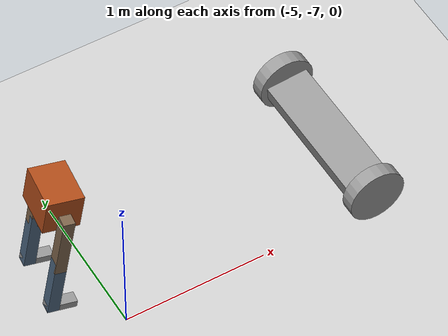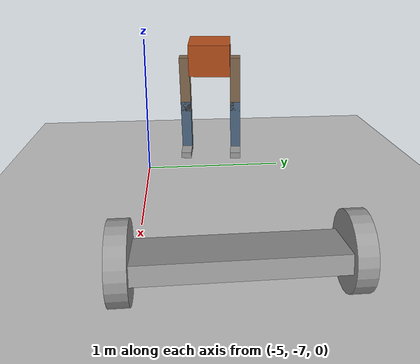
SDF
<sdf version="1.6">
 <world name="default">
  <model name="ground_plane">
   <static>1</static>
   <link name="link">
    <collision name="collision">
     <geometry><plane><normal>0 0 1</normal><size>100 100</size></plane></geometry>
     <surface><friction><ode><mu>100</mu><mu2>50</mu2></ode></friction></surface>
    </collision>
    <visual name="visual">
     <cast_shadows>0</cast_shadows>
     <geometry><plane><normal>0 0 1</normal><size>100 100</size></plane></geometry>
     <material>
      <script><uri>file://media/materials/scripts/gazebo.material</uri><name>Gazebo/Grey</name></script>
     </material>
    </visual>
   </link>
  </model>
  <model name="humanoid">
   <link name="link_0">
    <pose>0.043928 -0.199999 -0.333571 0 -0 0</pose>
    <inertial>
     <mass>1</mass>
     <inertia>
      <ixx>0.166667</ixx>
      <ixy>0</ixy>
      <ixz>0</ixz>
      <iyy>0.166667</iyy>
      <iyz>0</iyz>
      <izz>0.166667</izz>
     </inertia>
    </inertial>
    <visual name="visual">
     <geometry><box><size>0.2 0.08 0.05</size></box></geometry>
     <material>
      <lighting>1</lighting>
      <script><uri>file://media/materials/scripts/gazebo.material</uri><name>Gazebo/Grey</name></script>
      <ambient>0.3 0.3 0.3 1</ambient>
      <diffuse>0.7 0.7 0.7 1</diffuse>
      <specular>0.01 0.01 0.01 1</specular>
      <emissive>0 0 0 1</emissive>
      <shader type="vertex"><normal_map>__default__</normal_map></shader>
     </material>
    </visual>
    <collision name="collision">
     <geometry><box><size>0.2 0.08 0.05</size></box></geometry>
     <surface>
      <friction>
       <ode><mu>1</mu><mu2>1</mu2><fdir1>0 0 0</fdir1><slip1>0</slip1><slip2>0</slip2></ode>
       <torsional>
        <coefficient>1</coefficient>
        <patch_radius>0</patch_radius>
        <surface_radius>0</surface_radius>
        <use_patch_radius>1</use_patch_radius>
        <ode><slip>0</slip></ode>
       </torsional>
      </friction>
      <bounce><restitution_coefficient>0</restitution_coefficient><threshold>1e+06</threshold></bounce>
      <contact>
       <collide_without_contact>0</collide_without_contact>
       <collide_without_contact_bitmask>1</collide_without_contact_bitmask>
       <collide_bitmask>1</collide_bitmask>
       <ode>
        <soft_cfm>0</soft_cfm>
        <soft_erp>0.2</soft_erp>
        <kp>1e+13</kp>
        <kd>1</kd>
        <max_vel>0.01</max_vel>
        <min_depth>0</min_depth>
       </ode>
       <bullet>
        <split_impulse>1</split_impulse>
        <split_impulse_penetration_threshold>-0.01</split_impulse_penetration_threshold>
        <soft_cfm>0</soft_cfm>
        <soft_erp>0.2</soft_erp>
        <kp>1e+13</kp>
        <kd>1</kd>
       </bullet>
      </contact>
     </surface>
    </collision>
   </link>
   <link name="link_0_clone">
    <pose>0.043928 0.200001 -0.333571 0 -0 0</pose>
    <inertial>
     <mass>1</mass>
     <inertia>
      <ixx>0.166667</ixx>
      <ixy>0</ixy>
      <ixz>0</ixz>
      <iyy>0.166667</iyy>
      <iyz>0</iyz>
      <izz>0.166667</izz>
     </inertia>
    </inertial>
    <visual name="visual">
     <geometry><box><size>0.2 0.08 0.05</size></box></geometry>
     <material>
      <lighting>1</lighting>
      <script><uri>file://media/materials/scripts/gazebo.material</uri><name>Gazebo/Grey</name></script>
      <ambient>0.3 0.3 0.3 1</ambient>
      <diffuse>0.7 0.7 0.7 1</diffuse>
      <specular>0.01 0.01 0.01 1</specular>
      <emissive>0 0 0 1</emissive>
      <shader type="vertex"><normal_map>__default__</normal_map></shader>
     </material>
    </visual>
    <collision name="collision">
     <geometry><box><size>0.2 0.08 0.05</size></box></geometry>
     <surface>
      <friction>
       <ode><mu>1</mu><mu2>1</mu2><fdir1>0 0 0</fdir1><slip1>0</slip1><slip2>0</slip2></ode>
       <torsional>
        <coefficient>1</coefficient>
        <patch_radius>0</patch_radius>
        <surface_radius>0</surface_radius>
        <use_patch_radius>1</use_patch_radius>
        <ode><slip>0</slip></ode>
       </torsional>
      </friction>
      <bounce><restitution_coefficient>0</restitution_coefficient><threshold>1e+06</threshold></bounce>
      <contact>
       <collide_without_contact>0</collide_without_contact>
       <collide_without_contact_bitmask>1</collide_without_contact_bitmask>
       <collide_bitmask>1</collide_bitmask>
       <ode>
        <soft_cfm>0</soft_cfm>
        <soft_erp>0.2</soft_erp>
        <kp>1e+13</kp>
        <kd>1</kd>
        <max_vel>0.01</max_vel>
        <min_depth>0</min_depth>
       </ode>
       <bullet>
        <split_impulse>1</split_impulse>
        <split_impulse_penetration_threshold>-0.01</split_impulse_penetration_threshold>
        <soft_cfm>0</soft_cfm>
        <soft_erp>0.2</soft_erp>
        <kp>1e+13</kp>
        <kd>1</kd>
       </bullet>
      </contact>
     </surface>
    </collision>
   </link>
   <link name="link_0_clone_0">
    <pose>-0.016072 -0.199999 -0.133571 0 -0 0</pose>
    <inertial>
     <mass>1</mass>
     <inertia>
      <ixx>0.166667</ixx>
      <ixy>0</ixy>
      <ixz>0</ixz>
      <iyy>0.166667</iyy>
      <iyz>0</iyz>
      <izz>0.166667</izz>
     </inertia>
    </inertial>
    <visual name="visual">
     <geometry><box><size>0.08 0.08 0.45</size></box></geometry>
     <material>
      <lighting>1</lighting>
      <script><uri>file://media/materials/scripts/gazebo.material</uri><name>Gazebo/Grey</name></script>
      <ambient>0.3 0.4 0.5 1</ambient>
      <diffuse>0.7 0.7 0.7 1</diffuse>
      <specular>0.01 0.01 0.01 1</specular>
      <emissive>0 0 0 1</emissive>
      <shader type="vertex"><normal_map>__default__</normal_map></shader>
     </material>
    </visual>
    <collision name="collision">
     <geometry><box><size>0.08 0.08 0.45</size></box></geometry>
     <surface>
      <friction>
       <ode><mu>1</mu><mu2>1</mu2><fdir1>0 0 0</fdir1><slip1>0</slip1><slip2>0</slip2></ode>
       <torsional>
        <coefficient>1</coefficient>
        <patch_radius>0</patch_radius>
        <surface_radius>0</surface_radius>
        <use_patch_radius>1</use_patch_radius>
        <ode><slip>0</slip></ode>
       </torsional>
      </friction>
      <bounce><restitution_coefficient>0</restitution_coefficient><threshold>1e+06</threshold></bounce>
      <contact>
       <collide_without_contact>0</collide_without_contact>
       <collide_without_contact_bitmask>1</collide_without_contact_bitmask>
       <collide_bitmask>1</collide_bitmask>
       <ode>
        <soft_cfm>0</soft_cfm>
        <soft_erp>0.2</soft_erp>
        <kp>1e+13</kp>
        <kd>1</kd>
        <max_vel>0.01</max_vel>
        <min_depth>0</min_depth>
       </ode>
       <bullet>
        <split_impulse>1</split_impulse>
        <split_impulse_penetration_threshold>-0.01</split_impulse_penetration_threshold>
        <soft_cfm>0</soft_cfm>
        <soft_erp>0.2</soft_erp>
        <kp>1e+13</kp>
        <kd>1</kd>
       </bullet>
      </contact>
     </surface>
    </collision>
   </link>
   <link name="link_0_clone_0_clone">
    <pose>-0.016072 0.200001 -0.133571 0 -0 0</pose>
    <inertial>
     <mass>1</mass>
     <inertia>
      <ixx>0.166667</ixx>
      <ixy>0</ixy>
      <ixz>0</ixz>
      <iyy>0.166667</iyy>
      <iyz>0</iyz>
      <izz>0.166667</izz>
     </inertia>
    </inertial>
    <visual name="visual">
     <geometry><box><size>0.08 0.08 0.45</size></box></geometry>
     <material>
      <lighting>1</lighting>
      <script><uri>file://media/materials/scripts/gazebo.material</uri><name>Gazebo/Grey</name></script>
      <ambient>0.3 0.4 0.5 1</ambient>
      <diffuse>0.7 0.7 0.7 1</diffuse>
      <specular>0.01 0.01 0.01 1</specular>
      <emissive>0 0 0 1</emissive>
      <shader type="vertex"><normal_map>__default__</normal_map></shader>
     </material>
    </visual>
    <collision name="collision">
     <geometry><box><size>0.08 0.08 0.45</size></box></geometry>
     <surface>
      <friction>
       <ode><mu>1</mu><mu2>1</mu2><fdir1>0 0 0</fdir1><slip1>0</slip1><slip2>0</slip2></ode>
       <torsional>
        <coefficient>1</coefficient>
        <patch_radius>0</patch_radius>
        <surface_radius>0</surface_radius>
        <use_patch_radius>1</use_patch_radius>
        <ode><slip>0</slip></ode>
       </torsional>
      </friction>
      <bounce><restitution_coefficient>0</restitution_coefficient><threshold>1e+06</threshold></bounce>
      <contact>
       <collide_without_contact>0</collide_without_contact>
       <collide_without_contact_bitmask>1</collide_without_contact_bitmask>
       <collide_bitmask>1</collide_bitmask>
       <ode>
        <soft_cfm>0</soft_cfm>
        <soft_erp>0.2</soft_erp>
        <kp>1e+13</kp>
        <kd>1</kd>
        <max_vel>0.01</max_vel>
        <min_depth>0</min_depth>
       </ode>
       <bullet>
        <split_impulse>1</split_impulse>
        <split_impulse_penetration_threshold>-0.01</split_impulse_penetration_threshold>
        <soft_cfm>0</soft_cfm>
        <soft_erp>0.2</soft_erp>
        <kp>1e+13</kp>
        <kd>1</kd>
       </bullet>
      </contact>
     </surface>
    </collision>
   </link>
   <link name="link_0_clone_0_clone_0">
    <pose>-0.016072 -0.199999 0.236429 0 -0 0</pose>
    <inertial>
     <mass>1</mass>
     <inertia>
      <ixx>0.166667</ixx>
      <ixy>0</ixy>
      <ixz>0</ixz>
      <iyy>0.166667</iyy>
      <iyz>0</iyz>
      <izz>0.166667</izz>
     </inertia>
    </inertial>
    <visual name="visual">
     <geometry><box><size>0.08 0.08 0.45</size></box></geometry>
     <material>
      <lighting>1</lighting>
      <script><uri>file://media/materials/scripts/gazebo.material</uri><name>Gazebo/Grey</name></script>
      <ambient>0.5 0.4 0.3 1</ambient>
      <diffuse>0.7 0.7 0.7 1</diffuse>
      <specular>0.01 0.01 0.01 1</specular>
      <emissive>0 0 0 1</emissive>
      <shader type="vertex"><normal_map>__default__</normal_map></shader>
     </material>
    </visual>
    <collision name="collision">
     <geometry><box><size>0.08 0.08 0.45</size></box></geometry>
     <surface>
      <friction>
       <ode><mu>1</mu><mu2>1</mu2><fdir1>0 0 0</fdir1><slip1>0</slip1><slip2>0</slip2></ode>
       <torsional>
        <coefficient>1</coefficient>
        <patch_radius>0</patch_radius>
        <surface_radius>0</surface_radius>
        <use_patch_radius>1</use_patch_radius>
        <ode><slip>0</slip></ode>
       </torsional>
      </friction>
      <bounce><restitution_coefficient>0</restitution_coefficient><threshold>1e+06</threshold></bounce>
      <contact>
       <collide_without_contact>0</collide_without_contact>
       <collide_without_contact_bitmask>1</collide_without_contact_bitmask>
       <collide_bitmask>1</collide_bitmask>
       <ode>
        <soft_cfm>0</soft_cfm>
        <soft_erp>0.2</soft_erp>
        <kp>1e+13</kp>
        <kd>1</kd>
        <max_vel>0.01</max_vel>
        <min_depth>0</min_depth>
       </ode>
       <bullet>
        <split_impulse>1</split_impulse>
        <split_impulse_penetration_threshold>-0.01</split_impulse_penetration_threshold>
        <soft_cfm>0</soft_cfm>
        <soft_erp>0.2</soft_erp>
        <kp>1e+13</kp>
        <kd>1</kd>
       </bullet>
      </contact>
     </surface>
    </collision>
   </link>
   <link name="link_0_clone_0_clone_0_clone">
    <pose>-0.016072 0.200001 0.236429 0 -0 0</pose>
    <inertial>
     <mass>1</mass>
     <inertia>
      <ixx>0.166667</ixx>
      <ixy>0</ixy>
      <ixz>0</ixz>
      <iyy>0.166667</iyy>
      <iyz>0</iyz>
      <izz>0.166667</izz>
     </inertia>
    </inertial>
    <visual name="visual">
     <geometry><box><size>0.08 0.08 0.45</size></box></geometry>
     <material>
      <lighting>1</lighting>
      <script><uri>file://media/materials/scripts/gazebo.material</uri><name>Gazebo/Grey</name></script>
      <ambient>0.5 0.4 0.3 1</ambient>
      <diffuse>0.7 0.7 0.7 1</diffuse>
      <specular>0.01 0.01 0.01 1</specular>
      <emissive>0 0 0 1</emissive>
      <shader type="vertex"><normal_map>__default__</normal_map></shader>
     </material>
    </visual>
    <collision name="collision">
     <geometry><box><size>0.08 0.08 0.45</size></box></geometry>
     <surface>
      <friction>
       <ode><mu>1</mu><mu2>1</mu2><fdir1>0 0 0</fdir1><slip1>0</slip1><slip2>0</slip2></ode>
       <torsional>
        <coefficient>1</coefficient>
        <patch_radius>0</patch_radius>
        <surface_radius>0</surface_radius>
        <use_patch_radius>1</use_patch_radius>
        <ode><slip>0</slip></ode>
       </torsional>
      </friction>
      <bounce><restitution_coefficient>0</restitution_coefficient><threshold>1e+06</threshold></bounce>
      <contact>
       <collide_without_contact>0</collide_without_contact>
       <collide_without_contact_bitmask>1</collide_without_contact_bitmask>
       <collide_bitmask>1</collide_bitmask>
       <ode>
        <soft_cfm>0</soft_cfm>
        <soft_erp>0.2</soft_erp>
        <kp>1e+13</kp>
        <kd>1</kd>
        <max_vel>0.01</max_vel>
        <min_depth>0</min_depth>
       </ode>
       <bullet>
        <split_impulse>1</split_impulse>
        <split_impulse_penetration_threshold>-0.01</split_impulse_penetration_threshold>
        <soft_cfm>0</soft_cfm>
        <soft_erp>0.2</soft_erp>
        <kp>1e+13</kp>
        <kd>1</kd>
       </bullet>
      </contact>
     </surface>
    </collision>
   </link>
   <link name="link_2">
    <pose>-0.023572 1e-06 0.461429 0 -0 0</pose>
    <inertial>
     <mass>1</mass>
     <inertia>
      <ixx>0.166667</ixx>
      <ixy>0</ixy>
      <ixz>0</ixz>
      <iyy>0.166667</iyy>
      <iyz>0</iyz>
      <izz>0.166667</izz>
     </inertia>
    </inertial>
    <visual name="visual">
     <geometry><box><size>0.25 0.32 0.25</size></box></geometry>
     <material>
      <lighting>1</lighting>
      <script><uri>file://media/materials/scripts/gazebo.material</uri><name>Gazebo/Grey</name></script>
      <ambient>0.7 0.3 0.1 1</ambient>
      <diffuse>0.7 0.7 0.7 1</diffuse>
      <specular>0.01 0.01 0.01 1</specular>
      <emissive>0 0 0 1</emissive>
      <shader type="vertex"><normal_map>__default__</normal_map></shader>
     </material>
    </visual>
    <collision name="collision">
     <geometry><box><size>0.25 0.32 0.25</size></box></geometry>
     <surface>
      <friction>
       <ode><mu>1</mu><mu2>1</mu2><fdir1>0 0 0</fdir1><slip1>0</slip1><slip2>0</slip2></ode>
       <torsional>
        <coefficient>1</coefficient>
        <patch_radius>0</patch_radius>
        <surface_radius>0</surface_radius>
        <use_patch_radius>1</use_patch_radius>
        <ode><slip>0</slip></ode>
       </torsional>
      </friction>
      <bounce><restitution_coefficient>0</restitution_coefficient><threshold>1e+06</threshold></bounce>
      <contact>
       <collide_without_contact>0</collide_without_contact>
       <collide_without_contact_bitmask>1</collide_without_contact_bitmask>
       <collide_bitmask>1</collide_bitmask>
       <ode>
        <soft_cfm>0</soft_cfm>
        <soft_erp>0.2</soft_erp>
        <kp>1e+13</kp>
        <kd>1</kd>
        <max_vel>0.01</max_vel>
        <min_depth>0</min_depth>
       </ode>
       <bullet>
        <split_impulse>1</split_impulse>
        <split_impulse_penetration_threshold>-0.01</split_impulse_penetration_threshold>
        <soft_cfm>0</soft_cfm>
        <soft_erp>0.2</soft_erp>
        <kp>1e+13</kp>
        <kd>1</kd>
       </bullet>
      </contact>
     </surface>
    </collision>
   </link>
   <joint name="link_0_clone_0_JOINT_12" type="revolute">
    <parent>link_0_clone_0</parent>
    <child>link_0</child>
    <pose>-0.05 0 0 0 -0 0</pose>
    <axis>
     <xyz>0 1 0</xyz>
     <use_parent_model_frame>0</use_parent_model_frame>
     <limit>
      <lower>-1.79769e+308</lower>
      <upper>1.79769e+308</upper>
      <effort>-1</effort>
      <velocity>-1</velocity>
     </limit>
     <dynamics>
      <spring_reference>0</spring_reference>
      <spring_stiffness>0</spring_stiffness>
      <damping>0</damping>
      <friction>0</friction>
     </dynamics>
    </axis>
    <physics>
     <ode><limit><cfm>0</cfm><erp>0.2</erp></limit><suspension><cfm>0</cfm><erp>0.2</erp></suspension></ode>
    </physics>
   </joint>
   <joint name="link_0_clone_0_clone_0_JOINT_8" type="revolute">
    <parent>link_0_clone_0_clone_0</parent>
    <child>link_0_clone_0</child>
    <pose>0 0 0.225 0 -0 0</pose>
    <axis>
     <xyz>0 1 0</xyz>
     <use_parent_model_frame>0</use_parent_model_frame>
     <limit>
      <lower>-1.79769e+308</lower>
      <upper>1.79769e+308</upper>
      <effort>-1</effort>
      <velocity>-1</velocity>
     </limit>
     <dynamics>
      <spring_reference>0</spring_reference>
      <spring_stiffness>0</spring_stiffness>
      <damping>0</damping>
      <friction>0</friction>
     </dynamics>
    </axis>
    <physics>
     <ode><limit><cfm>0</cfm><erp>0.2</erp></limit><suspension><cfm>0</cfm><erp>0.2</erp></suspension></ode>
    </physics>
   </joint>
   <joint name="link_0_clone_0_clone_0_clone_JOINT_10" type="revolute">
    <parent>link_0_clone_0_clone_0_clone</parent>
    <child>link_0_clone_0_clone</child>
    <pose>0 0 0.225 0 -0 0</pose>
    <axis>
     <xyz>0 -1 0</xyz>
     <use_parent_model_frame>0</use_parent_model_frame>
     <limit>
      <lower>-1.79769e+308</lower>
      <upper>1.79769e+308</upper>
      <effort>-1</effort>
      <velocity>-1</velocity>
     </limit>
     <dynamics>
      <spring_reference>0</spring_reference>
      <spring_stiffness>0</spring_stiffness>
      <damping>0</damping>
      <friction>0</friction>
     </dynamics>
    </axis>
    <physics>
     <ode><limit><cfm>0</cfm><erp>0.2</erp></limit><suspension><cfm>0</cfm><erp>0.2</erp></suspension></ode>
    </physics>
   </joint>
   <joint name="link_0_clone_0_clone_JOINT_11" type="revolute">
    <parent>link_0_clone_0_clone</parent>
    <child>link_0_clone</child>
    <pose>-0.05 0 0 0 -0 0</pose>
    <axis>
     <xyz>0 -1 0</xyz>
     <use_parent_model_frame>0</use_parent_model_frame>
     <limit>
      <lower>-1.79769e+308</lower>
      <upper>1.79769e+308</upper>
      <effort>-1</effort>
      <velocity>-1</velocity>
     </limit>
     <dynamics>
      <spring_reference>0</spring_reference>
      <spring_stiffness>0</spring_stiffness>
      <damping>0</damping>
      <friction>0</friction>
     </dynamics>
    </axis>
    <physics>
     <ode><limit><cfm>0</cfm><erp>0.2</erp></limit><suspension><cfm>0</cfm><erp>0.2</erp></suspension></ode>
    </physics>
   </joint>
   <joint name="link_2_JOINT_6" type="revolute">
    <parent>link_2</parent>
    <child>link_0_clone_0_clone_0</child>
    <pose>0 0 0.225 0 -0 0</pose>
    <axis>
     <xyz>0 1 0</xyz>
     <use_parent_model_frame>0</use_parent_model_frame>
     <limit><lower>-1e+16</lower><upper>1e+16</upper><effort>-1</effort><velocity>-1</velocity></limit>
     <dynamics>
      <spring_reference>0</spring_reference>
      <spring_stiffness>0</spring_stiffness>
      <damping>0</damping>
      <friction>0</friction>
     </dynamics>
    </axis>
    <physics>
     <ode><limit><cfm>0</cfm><erp>0.2</erp></limit><suspension><cfm>0</cfm><erp>0.2</erp></suspension></ode>
    </physics>
   </joint>
   <joint name="link_2_JOINT_7" type="revolute">
    <parent>link_2</parent>
    <child>link_0_clone_0_clone_0_clone</child>
    <pose>0 0 0.225 0 -0 0</pose>
    <axis>
     <xyz>0 -1 0</xyz>
     <use_parent_model_frame>0</use_parent_model_frame>
     <limit>
      <lower>-1.79769e+308</lower>
      <upper>1.79769e+308</upper>
      <effort>-1</effort>
      <velocity>-1</velocity>
     </limit>
     <dynamics>
      <spring_reference>0</spring_reference>
      <spring_stiffness>0</spring_stiffness>
      <damping>0</damping>
      <friction>0</friction>
     </dynamics>
    </axis>
    <physics>
     <ode><limit><cfm>0</cfm><erp>0.2</erp></limit><suspension><cfm>0</cfm><erp>0.2</erp></suspension></ode>
    </physics>
   </joint>
   <static>0</static>
   <pose>-5.26598 -6.50264 0.37818 0 0.17531 -0.112397</pose>
  </model>
  <model name="robot">
   <link name="link_0">
    <inertial>
     <mass>1</mass>
     <inertia>
      <ixx>0.166667</ixx>
      <ixy>0</ixy>
      <ixz>0</ixz>
      <iyy>0.166667</iyy>
      <iyz>0</iyz>
      <izz>0.166667</izz>
     </inertia>
    </inertial>
    <visual name="visual">
     <geometry><box><size>0.3 1 0.1</size></box></geometry>
     <material>
      <lighting>1</lighting>
      <script><uri>file://media/materials/scripts/gazebo.material</uri><name>Gazebo/Grey</name></script>
      <ambient>0.3 0.3 0.3 1</ambient>
      <diffuse>0.7 0.7 0.7 1</diffuse>
      <specular>0.01 0.01 0.01 1</specular>
      <emissive>0 0 0 1</emissive>
      <shader type="vertex"><normal_map>__default__</normal_map></shader>
     </material>
    </visual>
    <collision name="collision">
     <geometry><box><size>0.3 1 0.1</size></box></geometry>
     <surface>
      <friction>
       <ode><mu>1</mu><mu2>1</mu2><fdir1>0 0 0</fdir1><slip1>0</slip1><slip2>0</slip2></ode>
       <torsional>
        <coefficient>1</coefficient>
        <patch_radius>0</patch_radius>
        <surface_radius>0</surface_radius>
        <use_patch_radius>1</use_patch_radius>
        <ode><slip>0</slip></ode>
       </torsional>
      </friction>
      <bounce><restitution_coefficient>0</restitution_coefficient><threshold>1e+06</threshold></bounce>
      <contact>
       <collide_without_contact>0</collide_without_contact>
       <collide_without_contact_bitmask>1</collide_without_contact_bitmask>
       <collide_bitmask>1</collide_bitmask>
       <ode>
        <soft_cfm>0</soft_cfm>
        <soft_erp>0.2</soft_erp>
        <kp>1e+13</kp>
        <kd>1</kd>
        <max_vel>0.01</max_vel>
        <min_depth>0</min_depth>
       </ode>
       <bullet>
        <split_impulse>1</split_impulse>
        <split_impulse_penetration_threshold>-0.01</split_impulse_penetration_threshold>
        <soft_cfm>0</soft_cfm>
        <soft_erp>0.2</soft_erp>
        <kp>1e+13</kp>
        <kd>1</kd>
       </bullet>
      </contact>
     </surface>
    </collision>
   </link>
   <link name="link_1">
    <pose>0 -0.550019 0 1.5707 -0 0</pose>
    <inertial>
     <mass>1</mass>
     <inertia><ixx>0.145833</ixx><ixy>0</ixy><ixz>0</ixz><iyy>0.145833</iyy><iyz>0</iyz><izz>0.125</izz></inertia>
    </inertial>
    <visual name="visual">
     <geometry><cylinder><radius>0.2</radius><length>0.1</length></cylinder></geometry>
     <material>
      <lighting>1</lighting>
      <script><uri>file://media/materials/scripts/gazebo.material</uri><name>Gazebo/Grey</name></script>
      <ambient>0.3 0.3 0.3 1</ambient>
      <diffuse>0.7 0.7 0.7 1</diffuse>
      <specular>0.01 0.01 0.01 1</specular>
      <emissive>0 0 0 1</emissive>
      <shader type="vertex"><normal_map>__default__</normal_map></shader>
     </material>
    </visual>
    <collision name="collision">
     <geometry><cylinder><radius>0.2</radius><length>0.1</length></cylinder></geometry>
     <surface>
      <friction>
       <ode><mu>1</mu><mu2>1</mu2><fdir1>0 0 0</fdir1><slip1>0</slip1><slip2>0</slip2></ode>
       <torsional>
        <coefficient>1</coefficient>
        <patch_radius>0</patch_radius>
        <surface_radius>0</surface_radius>
        <use_patch_radius>1</use_patch_radius>
        <ode><slip>0</slip></ode>
       </torsional>
      </friction>
      <bounce><restitution_coefficient>0</restitution_coefficient><threshold>1e+06</threshold></bounce>
      <contact>
       <collide_without_contact>0</collide_without_contact>
       <collide_without_contact_bitmask>1</collide_without_contact_bitmask>
       <collide_bitmask>1</collide_bitmask>
       <ode>
        <soft_cfm>0</soft_cfm>
        <soft_erp>0.2</soft_erp>
        <kp>1e+13</kp>
        <kd>1</kd>
        <max_vel>0.01</max_vel>
        <min_depth>0</min_depth>
       </ode>
       <bullet>
        <split_impulse>1</split_impulse>
        <split_impulse_penetration_threshold>-0.01</split_impulse_penetration_threshold>
        <soft_cfm>0</soft_cfm>
        <soft_erp>0.2</soft_erp>
        <kp>1e+13</kp>
        <kd>1</kd>
       </bullet>
      </contact>
     </surface>
    </collision>
   </link>
   <link name="link_1_clone">
    <pose>0 0.550019 0 1.5707 -0 0</pose>
    <inertial>
     <mass>1</mass>
     <inertia><ixx>0.145833</ixx><ixy>0</ixy><ixz>0</ixz><iyy>0.145833</iyy><iyz>0</iyz><izz>0.125</izz></inertia>
    </inertial>
    <visual name="visual">
     <geometry><cylinder><radius>0.2</radius><length>0.1</length></cylinder></geometry>
     <material>
      <lighting>1</lighting>
      <script><uri>file://media/materials/scripts/gazebo.material</uri><name>Gazebo/Grey</name></script>
      <ambient>0.3 0.3 0.3 1</ambient>
      <diffuse>0.7 0.7 0.7 1</diffuse>
      <specular>0.01 0.01 0.01 1</specular>
      <emissive>0 0 0 1</emissive>
      <shader type="vertex"><normal_map>__default__</normal_map></shader>
     </material>
    </visual>
    <collision name="collision">
     <geometry><cylinder><radius>0.2</radius><length>0.1</length></cylinder></geometry>
     <surface>
      <friction>
       <ode><mu>1</mu><mu2>1</mu2><fdir1>0 0 0</fdir1><slip1>0</slip1><slip2>0</slip2></ode>
       <torsional>
        <coefficient>1</coefficient>
        <patch_radius>0</patch_radius>
        <surface_radius>0</surface_radius>
        <use_patch_radius>1</use_patch_radius>
        <ode><slip>0</slip></ode>
       </torsional>
      </friction>
      <bounce><restitution_coefficient>0</restitution_coefficient><threshold>1e+06</threshold></bounce>
      <contact>
       <collide_without_contact>0</collide_without_contact>
       <collide_without_contact_bitmask>1</collide_without_contact_bitmask>
       <collide_bitmask>1</collide_bitmask>
       <ode>
        <soft_cfm>0</soft_cfm>
        <soft_erp>0.2</soft_erp>
        <kp>1e+13</kp>
        <kd>1</kd>
        <max_vel>0.01</max_vel>
        <min_depth>0</min_depth>
       </ode>
       <bullet>
        <split_impulse>1</split_impulse>
        <split_impulse_penetration_threshold>-0.01</split_impulse_penetration_threshold>
        <soft_cfm>0</soft_cfm>
        <soft_erp>0.2</soft_erp>
        <kp>1e+13</kp>
        <kd>1</kd>
       </bullet>
      </contact>
     </surface>
    </collision>
   </link>
   <joint name="link_0_JOINT_0" type="revolute">
    <parent>link_0</parent>
    <child>link_1</child>
    <axis>
     <xyz>0 0 1</xyz>
     <use_parent_model_frame>0</use_parent_model_frame>
     <limit>
      <lower>-1.79769e+308</lower>
      <upper>1.79769e+308</upper>
      <effort>-1</effort>
      <velocity>-1</velocity>
     </limit>
     <dynamics>
      <spring_reference>0</spring_reference>
      <spring_stiffness>0</spring_stiffness>
      <damping>0</damping>
     </dynamics>
    </axis>
    <physics>
     <ode><limit><cfm>0</cfm><erp>0.2</erp></limit><suspension><cfm>0</cfm><erp>0.2</erp></suspension></ode>
    </physics>
   </joint>
   <joint name="link_0_JOINT_1" type="revolute">
    <parent>link_0</parent>
    <child>link_1_clone</child>
    <axis>
     <xyz>0 0 1</xyz>
     <use_parent_model_frame>0</use_parent_model_frame>
     <limit>
      <lower>-1.79769e+308</lower>
      <upper>1.79769e+308</upper>
      <effort>-1</effort>
      <velocity>-1</velocity>
     </limit>
     <dynamics>
      <spring_reference>0</spring_reference>
      <spring_stiffness>0</spring_stiffness>
      <damping>0</damping>
     </dynamics>
    </axis>
    <physics>
     <ode><limit><cfm>0</cfm><erp>0.2</erp></limit><suspension><cfm>0</cfm><erp>0.2</erp></suspension></ode>
    </physics>
   </joint>
   <static>0</static>
   <pose>-3.21495 -6.49411 0.200005 0 -0.078171 0.004978</pose>
  </model>
 </world>
</sdf>
